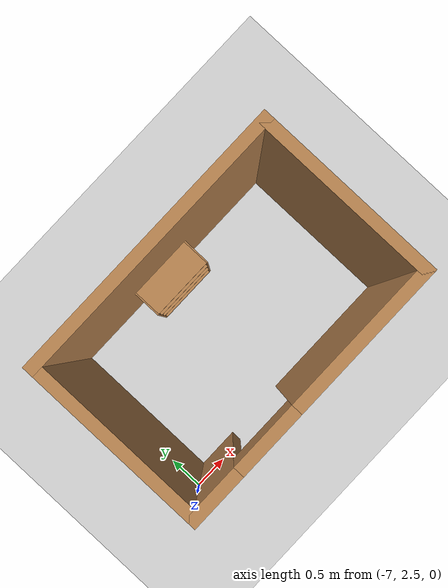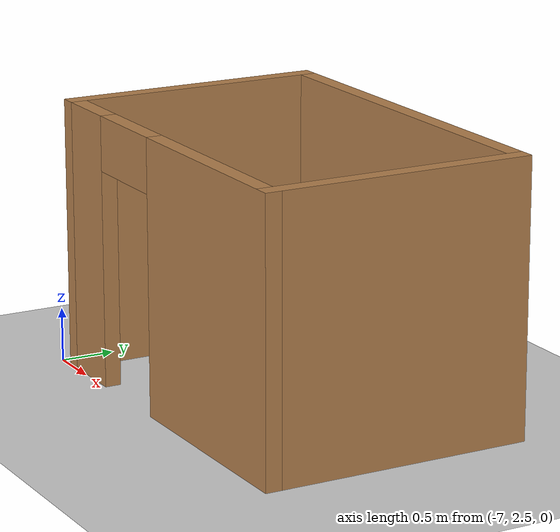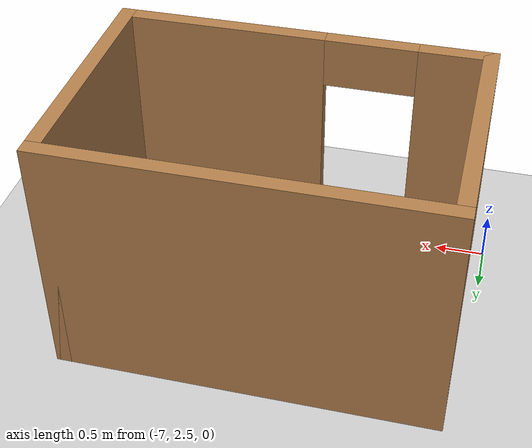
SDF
<sdf version="1.7">
 <world name="default">
  <light name="sun" type="directional">
   <pose>0 0 10 0 -0 0</pose>
   <diffuse>0.8 0.8 0.8 1</diffuse>
   <specular>0.2 0.2 0.2 1</specular>
   <attenuation>
    <range>1000</range>
    <constant>0.9</constant>
    <linear>0.01</linear>
    <quadratic>0.001</quadratic>
   </attenuation>
   <direction>-0.5 0.1 -0.9</direction>
   <spot><inner_angle>0</inner_angle><outer_angle>0</outer_angle><falloff>0</falloff></spot>
  </light>
  <model name="ground_plane">
   <static>1</static>
   <link name="link">
    <collision name="collision">
     <geometry><plane><normal>0 0 1</normal><size>100 100</size></plane></geometry>
     <surface>
      <contact><collide_bitmask>65535</collide_bitmask></contact>
      <friction><ode><mu>100</mu><mu2>50</mu2></ode></friction>
     </surface>
    </collision>
    <visual name="visual">
     <cast_shadows>0</cast_shadows>
     <geometry><plane><normal>0 0 1</normal><size>100 100</size></plane></geometry>
     <material>
      <script><uri>file://media/materials/scripts/gazebo.material</uri><name>Gazebo/Grey</name></script>
     </material>
    </visual>
   </link>
  </model>
  <gravity>0 0 -9.8</gravity>
  <magnetic_field>6e-06 2.3e-05 -4.2e-05</magnetic_field>
  <atmosphere type="adiabatic"/>
  <physics type="ode">
   <max_step_size>0.001</max_step_size>
   <real_time_factor>1</real_time_factor>
   <real_time_update_rate>1000</real_time_update_rate>
  </physics>
  <scene><ambient>0.4 0.4 0.4 1</ambient><background>0.7 0.7 0.7 1</background><shadows>1</shadows></scene>
  <spherical_coordinates>
   <surface_model>EARTH_WGS84</surface_model>
   <latitude_deg>0</latitude_deg>
   <longitude_deg>0</longitude_deg>
   <elevation>0</elevation>
   <heading_deg>0</heading_deg>
  </spherical_coordinates>
  <model name="room+door">
   <pose>-4.99883 4.80299 0 0 -0 0</pose>
   <link name="Wall_0">
    <collision name="Wall_0_Collision">
     <geometry><box><size>3.75 0.15 2.5</size></box></geometry>
     <pose>0 0 1.25 0 -0 0</pose>
    </collision>
    <visual name="Wall_0_Visual">
     <pose>0 0 1.25 0 -0 0</pose>
     <geometry><box><size>3.75 0.15 2.5</size></box></geometry>
     <material>
      <script><uri>file://media/materials/scripts/gazebo.material</uri><name>Gazebo/Wood</name></script>
      <ambient>1 1 1 1</ambient>
     </material>
     <meta><layer>0</layer></meta>
    </visual>
    <pose>0 0.1375 0 0 -0 0</pose>
   </link>
   <link name="Wall_1">
    <collision name="Wall_1_Collision">
     <geometry><box><size>2.5 0.15 2.5</size></box></geometry>
     <pose>0 0 1.25 0 -0 0</pose>
    </collision>
    <visual name="Wall_1_Visual">
     <pose>0 0 1.25 0 -0 0</pose>
     <geometry><box><size>2.5 0.15 2.5</size></box></geometry>
     <material>
      <script><uri>file://media/materials/scripts/gazebo.material</uri><name>Gazebo/Wood</name></script>
      <ambient>1 1 1 1</ambient>
     </material>
     <meta><layer>0</layer></meta>
    </visual>
    <pose>1.8 -1.0375 0 0 -0 -1.5708</pose>
   </link>
   <link name="Wall_2">
    <pose>0 -2.2125 0 0 -0 3.14159</pose>
    <visual name="Wall_2_Visual_0">
     <pose>-0.8275 0 1.25 0 -0 0</pose>
     <geometry><box><size>2.095 0.15 2.5</size></box></geometry>
     <material>
      <script><uri>file://media/materials/scripts/gazebo.material</uri><name>Gazebo/Wood</name></script>
      <ambient>1 1 1 1</ambient>
     </material>
     <meta><layer>0</layer></meta>
    </visual>
    <collision name="Wall_2_Collision_0">
     <geometry><box><size>2.095 0.15 2.5</size></box></geometry>
     <pose>-0.8275 0 1.25 0 -0 0</pose>
    </collision>
    <visual name="Wall_2_Visual_1">
     <pose>1.4975 0 1.25 0 -0 0</pose>
     <geometry><box><size>0.755 0.15 2.5</size></box></geometry>
     <material>
      <script><uri>file://media/materials/scripts/gazebo.material</uri><name>Gazebo/Wood</name></script>
      <ambient>1 1 1 1</ambient>
     </material>
     <meta><layer>0</layer></meta>
    </visual>
    <collision name="Wall_2_Collision_1">
     <geometry><box><size>0.755 0.15 2.5</size></box></geometry>
     <pose>1.4975 0 1.25 0 -0 0</pose>
    </collision>
    <visual name="Wall_2_Visual_2">
     <pose>0.67 0 2.25 0 -0 0</pose>
     <geometry><box><size>0.9 0.15 0.5</size></box></geometry>
     <material>
      <script><uri>file://media/materials/scripts/gazebo.material</uri><name>Gazebo/Wood</name></script>
      <ambient>1 1 1 1</ambient>
     </material>
     <meta><layer>0</layer></meta>
    </visual>
    <collision name="Wall_2_Collision_2">
     <geometry><box><size>0.9 0.15 0.5</size></box></geometry>
     <pose>0.67 0 2.25 0 -0 0</pose>
    </collision>
   </link>
   <link name="Wall_4">
    <collision name="Wall_4_Collision">
     <geometry><box><size>2.5 0.15 2.5</size></box></geometry>
     <pose>0 0 1.25 0 -0 0</pose>
    </collision>
    <visual name="Wall_4_Visual">
     <pose>0 0 1.25 0 -0 0</pose>
     <geometry><box><size>2.5 0.15 2.5</size></box></geometry>
     <material>
      <script><uri>file://media/materials/scripts/gazebo.material</uri><name>Gazebo/Wood</name></script>
      <ambient>1 1 1 1</ambient>
     </material>
     <meta><layer>0</layer></meta>
    </visual>
    <pose>-1.8 -1.0375 0 0 -0 1.5708</pose>
   </link>
   <static>1</static>
  </model>
  <model name="bookshelf">
   <static>1</static>
   <link name="link">
    <inertial><mass>1</mass></inertial>
    <collision name="back">
     <pose>0 0.005 0.6 0 -0 0</pose>
     <geometry><box><size>0.9 0.01 1.2</size></box></geometry>
    </collision>
    <visual name="visual1">
     <pose>0 0.005 0.6 0 -0 0</pose>
     <geometry><box><size>0.9 0.01 1.2</size></box></geometry>
     <material>
      <script><uri>file://media/materials/scripts/gazebo.material</uri><name>Gazebo/Wood</name></script>
     </material>
    </visual>
    <collision name="left_side">
     <pose>0.45 -0.195 0.6 0 -0 0</pose>
     <geometry><box><size>0.02 0.4 1.2</size></box></geometry>
    </collision>
    <visual name="visual2">
     <pose>0.45 -0.195 0.6 0 -0 0</pose>
     <geometry><box><size>0.02 0.4 1.2</size></box></geometry>
     <material>
      <script><uri>file://media/materials/scripts/gazebo.material</uri><name>Gazebo/Wood</name></script>
     </material>
    </visual>
    <collision name="right_side">
     <pose>-0.45 -0.195 0.6 0 -0 0</pose>
     <geometry><box><size>0.02 0.4 1.2</size></box></geometry>
    </collision>
    <visual name="visual3">
     <pose>-0.45 -0.195 0.6 0 -0 0</pose>
     <geometry><box><size>0.02 0.4 1.2</size></box></geometry>
     <material>
      <script><uri>file://media/materials/scripts/gazebo.material</uri><name>Gazebo/Wood</name></script>
     </material>
    </visual>
    <collision name="bottom">
     <pose>0 -0.195 0.03 0 -0 0</pose>
     <geometry><box><size>0.88 0.4 0.06</size></box></geometry>
    </collision>
    <visual name="visual4">
     <pose>0 -0.195 0.03 0 -0 0</pose>
     <geometry><box><size>0.88 0.4 0.06</size></box></geometry>
     <material>
      <script><uri>file://media/materials/scripts/gazebo.material</uri><name>Gazebo/Wood</name></script>
     </material>
    </visual>
    <collision name="top">
     <pose>0 -0.195 1.19 0 -0 0</pose>
     <geometry><box><size>0.88 0.4 0.02</size></box></geometry>
    </collision>
    <visual name="visual5">
     <pose>0 -0.195 1.19 0 -0 0</pose>
     <geometry><box><size>0.88 0.4 0.02</size></box></geometry>
     <material>
      <script><uri>file://media/materials/scripts/gazebo.material</uri><name>Gazebo/Wood</name></script>
     </material>
    </visual>
    <collision name="low_shelf">
     <pose>0 -0.195 0.43 0 -0 0</pose>
     <geometry><box><size>0.88 0.4 0.02</size></box></geometry>
    </collision>
    <visual name="visual6">
     <pose>0 -0.195 0.43 0 -0 0</pose>
     <geometry><box><size>0.88 0.4 0.02</size></box></geometry>
     <material>
      <script><uri>file://media/materials/scripts/gazebo.material</uri><name>Gazebo/Wood</name></script>
     </material>
    </visual>
    <collision name="high_shelf">
     <pose>0 -0.195 0.8 0 -0 0</pose>
     <geometry><box><size>0.88 0.4 0.02</size></box></geometry>
    </collision>
    <visual name="visual7">
     <pose>0 -0.195 0.8 0 -0 0</pose>
     <geometry><box><size>0.88 0.4 0.02</size></box></geometry>
     <material>
      <script><uri>file://media/materials/scripts/gazebo.material</uri><name>Gazebo/Wood</name></script>
     </material>
    </visual>
   </link>
   <pose>-5.1044 4.8702 0 0 -0 0</pose>
  </model>
 </world>
</sdf>
